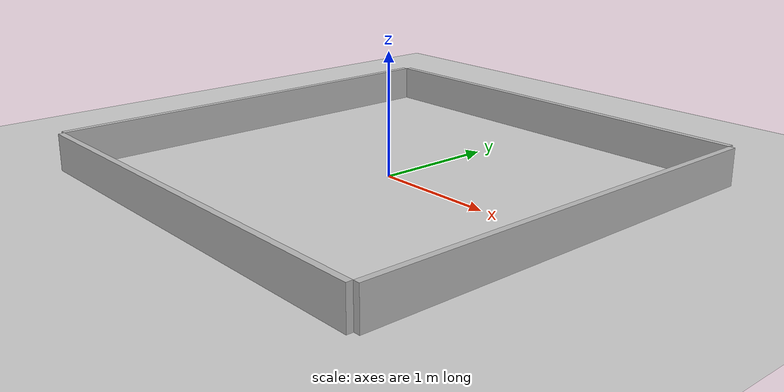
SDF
<?xml version="1.0"?>
  <sdf version='1.6'>
    <world name="default">
      <!-- Physics Params -->
      <physics type="ode">
        <max_step_size>0.002</max_step_size>
        <real_time_factor>1</real_time_factor>
        <real_time_update_rate>1000</real_time_update_rate>
        <ode>
          <solver>
            <type>quick</type>
            <iters>50</iters>
            <sor>1.3</sor>
            <friction_model>cone_model</friction_model>
          </solver>
          <constraints>
            <cfm>0</cfm>
            <erp>0.2</erp>
            <contact_max_correcting_vel>100</contact_max_correcting_vel>
            <contact_surface_layer>0.005</contact_surface_layer>
          </constraints>
        </ode>
      </physics>

      <!-- Model States Publisher -->
      <plugin name="gazebo_ros_state" filename="libgazebo_ros_state.so">
          <update_rate>60</update_rate>
      </plugin>

      <light name='sun' type='directional'>
        <cast_shadows>1</cast_shadows>
        <pose frame=''>0 0 10 0 -0 0</pose>
        <diffuse>0.8 0.8 0.8 1</diffuse>
        <specular>0.2 0.2 0.2 1</specular>
        <attenuation>
          <range>1000</range>
          <constant>0.9</constant>
          <linear>0.01</linear>
          <quadratic>0.001</quadratic>
        </attenuation>
        <direction>-0.5 0.1 -0.9</direction>
      </light>

      <model name='ground_plane'>
        <static>true</static>
        <link name='link'>
          <collision name='collision'>
            <geometry>
              <plane>
                <normal>0 0 1</normal>
                <size>100 100</size>
              </plane>
            </geometry>
            <surface>
              <friction>
              <ode>
                <mu>1</mu>
                <mu2>1</mu2>
                <fdir1>0 0 0</fdir1>
                <slip1>0</slip1>
                <slip2>0</slip2>
              </ode>
              <torsional>
                <coefficient>1</coefficient>
                <patch_radius>0</patch_radius>
                <surface_radius>0</surface_radius>
                <use_patch_radius>1</use_patch_radius>
                <ode>
                  <slip>0</slip>
                </ode>
              </torsional>
            </friction>
              <contact>
                <ode>
                  <kp>1000000</kp>
                  <kd>100</kd>
                </ode>
              </contact>
            </surface>
            <max_contacts>10</max_contacts>
          </collision>
          <visual name='visual'>
            <cast_shadows>0</cast_shadows>
            <geometry>
              <plane>
                <normal>0 0 1</normal>
                <size>100 100</size>
              </plane>
            </geometry>
          </visual>
          <self_collide>0</self_collide>
          <enable_wind>0</enable_wind>
          <kinematic>0</kinematic>
        </link>
      </model>

      <model name="walls">
        <static>true</static>
        <pose>0 0 0.1524 0 0 0</pose>

        <link name="wall_1">
          <pose>0 1.8542 0 0 0 0</pose>
          <visual name='visual'>
            <geometry>
              <box>
                <size>3.6576 0.0508 0.3048</size>
              </box>
            </geometry>
            <material>Gazebo/Black</material>
          </visual>
          <collision name='collision'>
            <geometry>
              <box>
                <size>3.6576 0.0508 0.3048</size>
              </box>
            </geometry>
          </collision>
        </link>

        <link name="wall_2">
          <pose>0 -1.8542 0 0 0 0</pose>
          <visual name='visual'>
            <geometry>
              <box>
                <size>3.6576 0.0508 0.3048</size>
              </box>
            </geometry>
            <material>Gazebo/Black</material>
          </visual>
          <collision name='collision'>
            <geometry>
              <box>
                <size>3.6576 0.0508 0.3048</size>
              </box>
            </geometry>
          </collision>
        </link>

        <link name="wall_3">
          <pose>1.8542 0 0 0 0 0</pose>
          <visual name='visual'>
            <geometry>
              <box>
                <size>0.0508 3.6576 0.3048</size>
              </box>
            </geometry>
            <material>Gazebo/Black</material>
          </visual>
          <collision name='collision'>
            <geometry>
              <box>
                <size>0.0508 3.6576 0.3048</size>
              </box>
            </geometry>
          </collision>
        </link>

        <link name="wall_4">
          <pose>-1.8542 0 0 0 0 0</pose>
          <visual name='visual'>
            <geometry>
              <box>
                <size>0.0508 3.6576 0.3048</size>
              </box>
            </geometry>
            <material>Gazebo/Black</material>
          </visual>
          <collision name='collision'>
            <geometry>
              <box>
                <size>0.0508 3.6576 0.3048</size>
              </box>
            </geometry>
          </collision>
        </link>
      </model>

    </world>
  </sdf>
